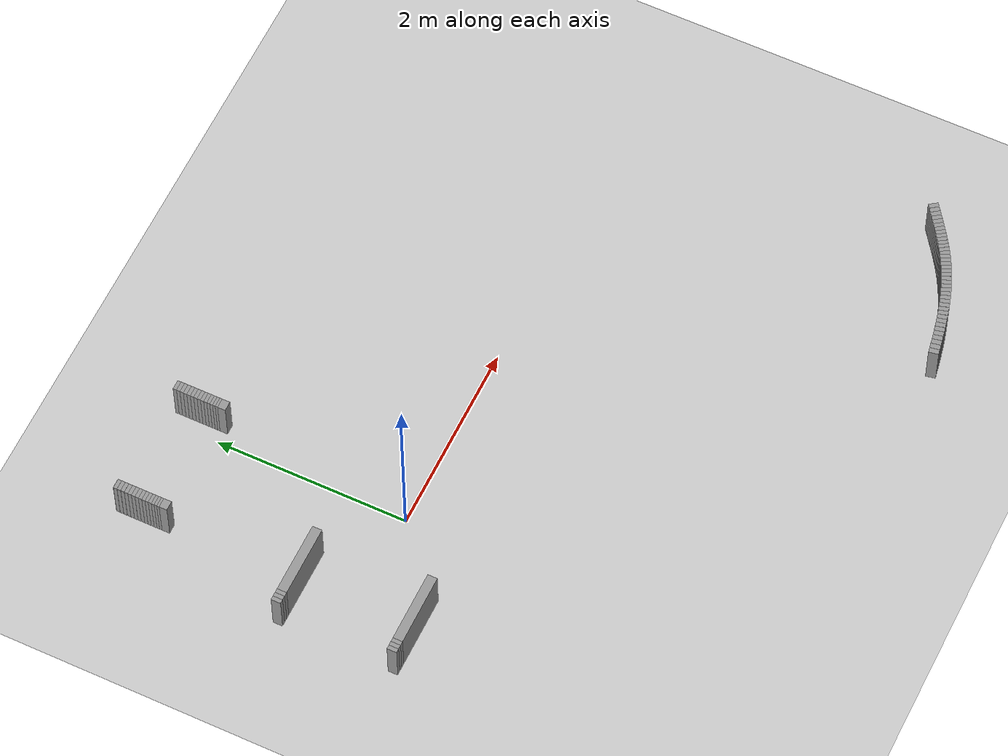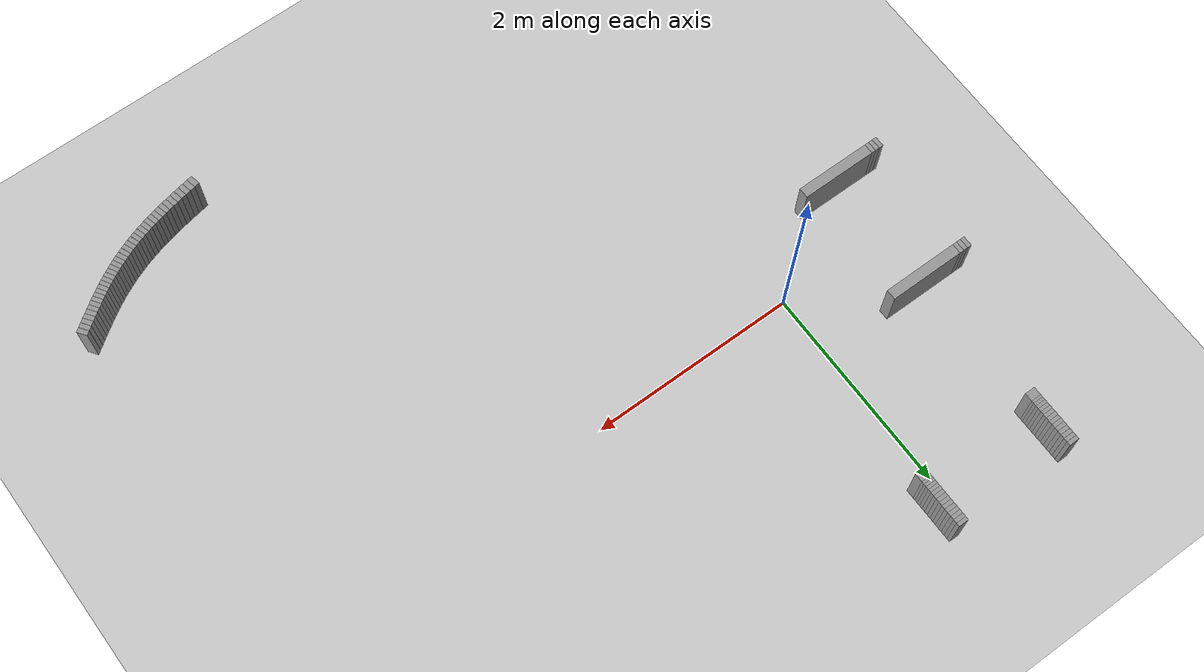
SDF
<sdf version="1.6">
 <world name="default">
  <include><uri>model://ground_plane</uri></include>
  <include><uri>model://sun</uri></include>
  <model name="wall_0_outward">
   <static>true</static>
   <link name="link">
    <collision name="collision">
     <geometry><box><size>0.7352529885792195 0.1 0.45</size></box></geometry>
    </collision>
    <visual name="visual">
     <geometry><box><size>0.7352529885792195 0.1 0.45</size></box></geometry>
     <material>
      <script><uri>file://media/materials/scripts/gazebo.material</uri><name>Gazebo/Gray</name></script>
     </material>
    </visual>
   </link>
   <pose>-1.0092482364808772 -0.6 0.225 0 0 3.141592653589793</pose>
  </model>
  <model name="wall_1_outward">
   <static>true</static>
   <link name="link">
    <collision name="collision">
     <geometry><box><size>0.04206558050443104 0.1 0.45</size></box></geometry>
    </collision>
    <visual name="visual">
     <geometry><box><size>0.04206558050443104 0.1 0.45</size></box></geometry>
     <material>
      <script><uri>file://media/materials/scripts/gazebo.material</uri><name>Gazebo/Gray</name></script>
     </material>
    </visual>
   </link>
   <pose>-1.3979075210213443 -0.599999760987078 0.225 0 0 3.141581289766011</pose>
  </model>
  <model name="wall_2_outward">
   <static>true</static>
   <link name="link">
    <collision name="collision">
     <geometry><box><size>0.042329117051585576 0.1 0.45</size></box></geometry>
    </collision>
    <visual name="visual">
     <geometry><box><size>0.042329117051585576 0.1 0.45</size></box></geometry>
     <material>
      <script><uri>file://media/materials/scripts/gazebo.material</uri><name>Gazebo/Gray</name></script>
     </material>
    </visual>
   </link>
   <pose>-1.440104869793848 -0.5999991030226777 0.225 0 0 3.141572858635049</pose>
  </model>
  <model name="wall_3_outward">
   <static>true</static>
   <link name="link">
    <collision name="collision">
     <geometry><box><size>0.042769654333055525 0.1 0.45</size></box></geometry>
    </collision>
    <visual name="visual">
     <geometry><box><size>0.042769654333055525 0.1 0.45</size></box></geometry>
     <material>
      <script><uri>file://media/materials/scripts/gazebo.material</uri><name>Gazebo/Gray</name></script>
     </material>
    </visual>
   </link>
   <pose>-1.4826542554699165 -0.5999979645170858 0.225 0 0 3.141559005709066</pose>
  </model>
  <model name="wall_568_outward">
   <static>true</static>
   <link name="link">
    <collision name="collision">
     <geometry><box><size>0.053017266116490075 0.1 0.45</size></box></geometry>
    </collision>
    <visual name="visual">
     <geometry><box><size>0.053017266116490075 0.1 0.45</size></box></geometry>
     <material>
      <script><uri>file://media/materials/scripts/gazebo.material</uri><name>Gazebo/Gray</name></script>
     </material>
    </visual>
   </link>
   <pose>3.615203698567644 -3.84858166946978 0.225 0 0 0.17872849832454832</pose>
  </model>
  <model name="wall_569_outward">
   <static>true</static>
   <link name="link">
    <collision name="collision">
     <geometry><box><size>0.05213729205083765 0.1 0.45</size></box></geometry>
    </collision>
    <visual name="visual">
     <geometry><box><size>0.05213729205083765 0.1 0.45</size></box></geometry>
     <material>
      <script><uri>file://media/materials/scripts/gazebo.material</uri><name>Gazebo/Gray</name></script>
     </material>
    </visual>
   </link>
   <pose>3.666919521861872 -3.8391040123762115 0.225 0 0 0.1838198138295405</pose>
  </model>
  <model name="wall_570_outward">
   <static>true</static>
   <link name="link">
    <collision name="collision">
     <geometry><box><size>0.0512412510066397 0.1 0.45</size></box></geometry>
    </collision>
    <visual name="visual">
     <geometry><box><size>0.0512412510066397 0.1 0.45</size></box></geometry>
     <material>
      <script><uri>file://media/materials/scripts/gazebo.material</uri><name>Gazebo/Gray</name></script>
     </material>
    </visual>
   </link>
   <pose>3.7177114322716642 -3.829515382858421 0.225 0 0 0.1894019966786466</pose>
  </model>
  <model name="wall_571_outward">
   <static>true</static>
   <link name="link">
    <collision name="collision">
     <geometry><box><size>0.05032899950200576 0.1 0.45</size></box></geometry>
    </collision>
    <visual name="visual">
     <geometry><box><size>0.05032899950200576 0.1 0.45</size></box></geometry>
     <material>
      <script><uri>file://media/materials/scripts/gazebo.material</uri><name>Gazebo/Gray</name></script>
     </material>
    </visual>
   </link>
   <pose>3.7675586047438125 -3.8198012847660427 0.225 0 0 0.19558427571582498</pose>
  </model>
  <model name="wall_572_outward">
   <static>true</static>
   <link name="link">
    <collision name="collision">
     <geometry><box><size>0.04940996343032932 0.1 0.45</size></box></geometry>
    </collision>
    <visual name="visual">
     <geometry><box><size>0.04940996343032932 0.1 0.45</size></box></geometry>
     <material>
      <script><uri>file://media/materials/scripts/gazebo.material</uri><name>Gazebo/Gray</name></script>
     </material>
    </visual>
   </link>
   <pose>3.8164434378640175 -3.809941851701242 0.225 0 0 0.20251378199398642</pose>
  </model>
  <model name="wall_573_outward">
   <static>true</static>
   <link name="link">
    <collision name="collision">
     <geometry><box><size>0.04850181031900355 0.1 0.45</size></box></geometry>
    </collision>
    <visual name="visual">
     <geometry><box><size>0.04850181031900355 0.1 0.45</size></box></geometry>
     <material>
      <script><uri>file://media/materials/scripts/gazebo.material</uri><name>Gazebo/Gray</name></script>
     </material>
    </visual>
   </link>
   <pose>3.8643601742831617 -3.799910454915584 0.225 0 0 0.21029867961050164</pose>
  </model>
  <model name="wall_574_outward">
   <static>true</static>
   <link name="link">
    <collision name="collision">
     <geometry><box><size>0.0476135669091147 0.1 0.45</size></box></geometry>
    </collision>
    <visual name="visual">
     <geometry><box><size>0.0476135669091147 0.1 0.45</size></box></geometry>
     <material>
      <script><uri>file://media/materials/scripts/gazebo.material</uri><name>Gazebo/Gray</name></script>
     </material>
    </visual>
   </link>
   <pose>3.911314717312827 -3.7896748241490243 0.225 0 0 0.21904715548584994</pose>
  </model>
  <model name="wall_575_outward">
   <static>true</static>
   <link name="link">
    <collision name="collision">
     <geometry><box><size>0.04676047734998403 0.1 0.45</size></box></geometry>
    </collision>
    <visual name="visual">
     <geometry><box><size>0.04676047734998403 0.1 0.45</size></box></geometry>
     <material>
      <script><uri>file://media/materials/scripts/gazebo.material</uri><name>Gazebo/Gray</name></script>
     </material>
    </visual>
   </link>
   <pose>3.957323245360799 -3.779197381860033 0.225 0 0 0.22886100199727444</pose>
  </model>
  <model name="wall_576_outward">
   <static>true</static>
   <link name="link">
    <collision name="collision">
     <geometry><box><size>0.04596101038654012 0.1 0.45</size></box></geometry>
    </collision>
    <visual name="visual">
     <geometry><box><size>0.04596101038654012 0.1 0.45</size></box></geometry>
     <material>
      <script><uri>file://media/materials/scripts/gazebo.material</uri><name>Gazebo/Gray</name></script>
     </material>
    </visual>
   </link>
   <pose>4.002416796040922 -3.768435133343746 0.225 0 0 0.2397977543745996</pose>
  </model>
  <model name="wall_577_outward">
   <static>true</static>
   <link name="link">
    <collision name="collision">
     <geometry><box><size>0.04523915246112577 0.1 0.45</size></box></geometry>
    </collision>
    <visual name="visual">
     <geometry><box><size>0.04523915246112577 0.1 0.45</size></box></geometry>
     <material>
      <script><uri>file://media/materials/scripts/gazebo.material</uri><name>Gazebo/Gray</name></script>
     </material>
    </visual>
   </link>
   <pose>4.046645455253664 -3.7573393232935617 0.225 0 0 0.2518997483251292</pose>
  </model>
  <model name="wall_578_outward">
   <static>true</static>
   <link name="link">
    <collision name="collision">
     <geometry><box><size>0.044611151980058064 0.1 0.45</size></box></geometry>
    </collision>
    <visual name="visual">
     <geometry><box><size>0.044611151980058064 0.1 0.45</size></box></geometry>
     <material>
      <script><uri>file://media/materials/scripts/gazebo.material</uri><name>Gazebo/Gray</name></script>
     </material>
    </visual>
   </link>
   <pose>4.090077385169733 -3.7458567923904056 0.225 0 0 0.26512522218582857</pose>
  </model>
  <model name="wall_579_outward">
   <static>true</static>
   <link name="link">
    <collision name="collision">
     <geometry><box><size>0.04408059990379287 0.1 0.45</size></box></geometry>
    </collision>
    <visual name="visual">
     <geometry><box><size>0.04408059990379287 0.1 0.45</size></box></geometry>
     <material>
      <script><uri>file://media/materials/scripts/gazebo.material</uri><name>Gazebo/Gray</name></script>
     </material>
    </visual>
   </link>
   <pose>4.1327889632396975 -3.7339329887893173 0.225 0 0 0.2794386958665861</pose>
  </model>
  <model name="wall_580_outward">
   <static>true</static>
   <link name="link">
    <collision name="collision">
     <geometry><box><size>0.0436638113182198 0.1 0.45</size></box></geometry>
    </collision>
    <visual name="visual">
     <geometry><box><size>0.0436638113182198 0.1 0.45</size></box></geometry>
     <material>
      <script><uri>file://media/materials/scripts/gazebo.material</uri><name>Gazebo/Gray</name></script>
     </material>
    </visual>
   </link>
   <pose>4.174864772362844 -3.7215118774106317 0.225 0 0 0.2947431972925181</pose>
  </model>
  <model name="wall_581_outward">
   <static>true</static>
   <link name="link">
    <collision name="collision">
     <geometry><box><size>0.043355145966205745 0.1 0.45</size></box></geometry>
    </collision>
    <visual name="visual">
     <geometry><box><size>0.043355145966205745 0.1 0.45</size></box></geometry>
     <material>
      <script><uri>file://media/materials/scripts/gazebo.material</uri><name>Gazebo/Gray</name></script>
     </material>
    </visual>
   </link>
   <pose>4.216393543263267 -3.708538350656753 0.225 0 0 0.3108989466485318</pose>
  </model>
  <model name="wall_582_outward">
   <static>true</static>
   <link name="link">
    <collision name="collision">
     <geometry><box><size>0.043134155114308154 0.1 0.45</size></box></geometry>
    </collision>
    <visual name="visual">
     <geometry><box><size>0.043134155114308154 0.1 0.45</size></box></geometry>
     <material>
      <script><uri>file://media/materials/scripts/gazebo.material</uri><name>Gazebo/Gray</name></script>
     </material>
    </visual>
   </link>
   <pose>4.257450814538057 -3.694963841428314 0.225 0 0 0.32776405779164725</pose>
  </model>
  <model name="wall_583_outward">
   <static>true</static>
   <link name="link">
    <collision name="collision">
     <geometry><box><size>0.042984876442158024 0.1 0.45</size></box></geometry>
    </collision>
    <visual name="visual">
     <geometry><box><size>0.042984876442158024 0.1 0.45</size></box></geometry>
     <material>
      <script><uri>file://media/materials/scripts/gazebo.material</uri><name>Gazebo/Gray</name></script>
     </material>
    </visual>
   </link>
   <pose>4.298094368321372 -3.680748263737411 0.225 0 0 0.34519201477795525</pose>
  </model>
  <model name="wall_584_outward">
   <static>true</static>
   <link name="link">
    <collision name="collision">
     <geometry><box><size>0.042874806264610786 0.1 0.45</size></box></geometry>
    </collision>
    <visual name="visual">
     <geometry><box><size>0.042874806264610786 0.1 0.45</size></box></geometry>
     <material>
      <script><uri>file://media/materials/scripts/gazebo.material</uri><name>Gazebo/Gray</name></script>
     </material>
    </visual>
   </link>
   <pose>4.338359283311862 -3.6658633225414476 0.225 0 0 0.3630192698370215</pose>
  </model>
  <model name="wall_585_outward">
   <static>true</static>
   <link name="link">
    <collision name="collision">
     <geometry><box><size>0.04276875257262225 0.1 0.45</size></box></geometry>
    </collision>
    <visual name="visual">
     <geometry><box><size>0.04276875257262225 0.1 0.45</size></box></geometry>
     <material>
      <script><uri>file://media/materials/scripts/gazebo.material</uri><name>Gazebo/Gray</name></script>
     </material>
    </visual>
   </link>
   <pose>4.378249557459766 -3.6502966746507144 0.225 0 0 0.38112612346563235</pose>
  </model>
  <model name="wall_586_outward">
   <static>true</static>
   <link name="link">
    <collision name="collision">
     <geometry><box><size>0.042637099325139524 0.1 0.45</size></box></geometry>
    </collision>
    <visual name="visual">
     <geometry><box><size>0.042637099325139524 0.1 0.45</size></box></geometry>
     <material>
      <script><uri>file://media/materials/scripts/gazebo.material</uri><name>Gazebo/Gray</name></script>
     </material>
    </visual>
   </link>
   <pose>4.417740263960553 -3.6340525401783923 0.225 0 0 0.3993909199528518</pose>
  </model>
  <model name="wall_587_outward">
   <static>true</static>
   <link name="link">
    <collision name="collision">
     <geometry><box><size>0.04245393868913026 0.1 0.45</size></box></geometry>
    </collision>
    <visual name="visual">
     <geometry><box><size>0.04245393868913026 0.1 0.45</size></box></geometry>
     <material>
      <script><uri>file://media/materials/scripts/gazebo.material</uri><name>Gazebo/Gray</name></script>
     </material>
    </visual>
   </link>
   <pose>4.456782777211078 -3.6171513187839315 0.225 0 0 0.41772223702745376</pose>
  </model>
  <model name="wall_588_outward">
   <static>true</static>
   <link name="link">
    <collision name="collision">
     <geometry><box><size>0.04219462105625225 0.1 0.45</size></box></geometry>
    </collision>
    <visual name="visual">
     <geometry><box><size>0.04219462105625225 0.1 0.45</size></box></geometry>
     <material>
      <script><uri>file://media/materials/scripts/gazebo.material</uri><name>Gazebo/Gray</name></script>
     </material>
    </visual>
   </link>
   <pose>4.49530781607841 -3.599629452822336 0.225 0 0 0.4360399209812888</pose>
  </model>
  <model name="wall_589_outward">
   <static>true</static>
   <link name="link">
    <collision name="collision">
     <geometry><box><size>0.04185732292672582 0.1 0.45</size></box></geometry>
    </collision>
    <visual name="visual">
     <geometry><box><size>0.04185732292672582 0.1 0.45</size></box></geometry>
     <material>
      <script><uri>file://media/materials/scripts/gazebo.material</uri><name>Gazebo/Gray</name></script>
     </material>
    </visual>
   </link>
   <pose>4.533236974308696 -3.5815348634082507 0.225 0 0 0.4542933882945561</pose>
  </model>
  <model name="wall_590_outward">
   <static>true</static>
   <link name="link">
    <collision name="collision">
     <geometry><box><size>0.04145026174393556 0.1 0.45</size></box></geometry>
    </collision>
    <visual name="visual">
     <geometry><box><size>0.04145026174393556 0.1 0.45</size></box></geometry>
     <material>
      <script><uri>file://media/materials/scripts/gazebo.material</uri><name>Gazebo/Gray</name></script>
     </material>
    </visual>
   </link>
   <pose>4.570498067819502 -3.562920165621402 0.225 0 0 0.4724096785721097</pose>
  </model>
  <model name="wall_591_outward">
   <static>true</static>
   <link name="link">
    <collision name="collision">
     <geometry><box><size>0.040995072226434906 0.1 0.45</size></box></geometry>
    </collision>
    <visual name="visual">
     <geometry><box><size>0.040995072226434906 0.1 0.45</size></box></geometry>
     <material>
      <script><uri>file://media/materials/scripts/gazebo.material</uri><name>Gazebo/Gray</name></script>
     </material>
    </visual>
   </link>
   <pose>4.607035752278472 -3.5438369399902085 0.225 0 0 0.49032783140802494</pose>
  </model>
  <model name="wall_592_outward">
   <static>true</static>
   <link name="link">
    <collision name="collision">
     <geometry><box><size>0.04052536722149174 0.1 0.45</size></box></geometry>
    </collision>
    <visual name="visual">
     <geometry><box><size>0.04052536722149174 0.1 0.45</size></box></geometry>
     <material>
      <script><uri>file://media/materials/scripts/gazebo.material</uri><name>Gazebo/Gray</name></script>
     </material>
    </visual>
   </link>
   <pose>4.642822688504974 -3.5243289460849963 0.225 0 0 0.5079435835349708</pose>
  </model>
  <model name="wall_593_outward">
   <static>true</static>
   <link name="link">
    <collision name="collision">
     <geometry><box><size>0.040093855230199454 0.1 0.45</size></box></geometry>
    </collision>
    <visual name="visual">
     <geometry><box><size>0.040093855230199454 0.1 0.45</size></box></geometry>
     <material>
      <script><uri>file://media/materials/scripts/gazebo.material</uri><name>Gazebo/Gray</name></script>
     </material>
    </visual>
   </link>
   <pose>4.677872635417048 -3.5044230272156076 0.225 0 0 0.5251581781216179</pose>
  </model>
  <model name="wall_594_outward">
   <static>true</static>
   <link name="link">
    <collision name="collision">
     <geometry><box><size>0.03975268590386546 0.1 0.45</size></box></geometry>
    </collision>
    <visual name="visual">
     <geometry><box><size>0.03975268590386546 0.1 0.45</size></box></geometry>
     <material>
      <script><uri>file://media/materials/scripts/gazebo.material</uri><name>Gazebo/Gray</name></script>
     </material>
    </visual>
   </link>
   <pose>4.7122480824285375 -3.484123121769032 0.225 0 0 0.5417746030446022</pose>
  </model>
  <model name="wall_595_outward">
   <static>true</static>
   <link name="link">
    <collision name="collision">
     <geometry><box><size>0.039545795710744555 0.1 0.45</size></box></geometry>
    </collision>
    <visual name="visual">
     <geometry><box><size>0.039545795710744555 0.1 0.45</size></box></geometry>
     <material>
      <script><uri>file://media/materials/scripts/gazebo.material</uri><name>Gazebo/Gray</name></script>
     </material>
    </visual>
   </link>
   <pose>4.746055662094089 -3.463410536980983 0.225 0 0 0.5576208728609399</pose>
  </model>
  <model name="wall_596_outward">
   <static>true</static>
   <link name="link">
    <collision name="collision">
     <geometry><box><size>0.03952248201079314 0.1 0.45</size></box></geometry>
    </collision>
    <visual name="visual">
     <geometry><box><size>0.03952248201079314 0.1 0.45</size></box></geometry>
     <material>
      <script><uri>file://media/materials/scripts/gazebo.material</uri><name>Gazebo/Gray</name></script>
     </material>
    </visual>
   </link>
   <pose>4.779444202719219 -3.4422429283894376 0.225 0 0 0.5724425969107847</pose>
  </model>
  <model name="wall_597_outward">
   <static>true</static>
   <link name="link">
    <collision name="collision">
     <geometry><box><size>0.03969649491608058 0.1 0.45</size></box></geometry>
    </collision>
    <visual name="visual">
     <geometry><box><size>0.03969649491608058 0.1 0.45</size></box></geometry>
     <material>
      <script><uri>file://media/materials/scripts/gazebo.material</uri><name>Gazebo/Gray</name></script>
     </material>
    </visual>
   </link>
   <pose>4.812591839661009 -3.420561747110428 0.225 0 0 0.5860026867211826</pose>
  </model>
  <model name="wall_598_outward">
   <static>true</static>
   <link name="link">
    <collision name="collision">
     <geometry><box><size>0.04009765626313205 0.1 0.45</size></box></geometry>
    </collision>
    <visual name="visual">
     <geometry><box><size>0.04009765626313205 0.1 0.45</size></box></geometry>
     <material>
      <script><uri>file://media/materials/scripts/gazebo.material</uri><name>Gazebo/Gray</name></script>
     </material>
    </visual>
   </link>
   <pose>4.84569733586841 -3.3982964205982915 0.225 0 0 0.5980752355560149</pose>
  </model>
  <model name="wall_599_outward">
   <static>true</static>
   <link name="link">
    <collision name="collision">
     <geometry><box><size>0.0407092494180846 0.1 0.45</size></box></geometry>
    </collision>
    <visual name="visual">
     <geometry><box><size>0.0407092494180846 0.1 0.45</size></box></geometry>
     <material>
      <script><uri>file://media/materials/scripts/gazebo.material</uri><name>Gazebo/Gray</name></script>
     </material>
    </visual>
   </link>
   <pose>4.878968538982267 -3.3753743206604643 0.225 0 0 0.6083854297769725</pose>
  </model>
  <model name="wall_600_outward">
   <static>true</static>
   <link name="link">
    <collision name="collision">
     <geometry><box><size>0.04149790492573709 0.1 0.45</size></box></geometry>
    </collision>
    <visual name="visual">
     <geometry><box><size>0.04149790492573709 0.1 0.45</size></box></geometry>
     <material>
      <script><uri>file://media/materials/scripts/gazebo.material</uri><name>Gazebo/Gray</name></script>
     </material>
    </visual>
   </link>
   <pose>4.912596530916309 -3.3517389176224235 0.225 0 0 0.6168048722072831</pose>
  </model>
  <model name="wall_601_outward">
   <static>true</static>
   <link name="link">
    <collision name="collision">
     <geometry><box><size>0.04244134782927291 0.1 0.45</size></box></geometry>
    </collision>
    <visual name="visual">
     <geometry><box><size>0.04244134782927291 0.1 0.45</size></box></geometry>
     <material>
      <script><uri>file://media/materials/scripts/gazebo.material</uri><name>Gazebo/Gray</name></script>
     </material>
    </visual>
   </link>
   <pose>4.946753781322598 -3.3273521617902238 0.225 0 0 0.62318497342778</pose>
  </model>
  <model name="wall_602_outward">
   <static>true</static>
   <link name="link">
    <collision name="collision">
     <geometry><box><size>0.04347704874346127 0.1 0.45</size></box></geometry>
    </collision>
    <visual name="visual">
     <geometry><box><size>0.04347704874346127 0.1 0.45</size></box></geometry>
     <material>
      <script><uri>file://media/materials/scripts/gazebo.material</uri><name>Gazebo/Gray</name></script>
     </material>
    </visual>
   </link>
   <pose>4.981583061810033 -3.302204489086564 0.225 0 0 0.6274764419319722</pose>
  </model>
  <model name="wall_603_outward">
   <static>true</static>
   <link name="link">
    <collision name="collision">
     <geometry><box><size>0.04455799672066599 0.1 0.45</size></box></geometry>
    </collision>
    <visual name="visual">
     <geometry><box><size>0.04455799672066599 0.1 0.45</size></box></geometry>
     <material>
      <script><uri>file://media/materials/scripts/gazebo.material</uri><name>Gazebo/Gray</name></script>
     </material>
    </visual>
   </link>
   <pose>5.01718643259776 -3.2763212924385603 0.225 0 0 0.6297151577611809</pose>
  </model>
  <model name="wall_604_outward">
   <static>true</static>
   <link name="link">
    <collision name="collision">
     <geometry><box><size>0.04517443209630957 0.1 0.45</size></box></geometry>
    </collision>
    <visual name="visual">
     <geometry><box><size>0.04517443209630957 0.1 0.45</size></box></geometry>
     <material>
      <script><uri>file://media/materials/scripts/gazebo.material</uri><name>Gazebo/Gray</name></script>
     </material>
    </visual>
   </link>
   <pose>5.053443452164512 -3.2498939261349804 0.225 0 0 0.6299890171882399</pose>
  </model>
  <model name="wall_605_outward">
   <static>true</static>
   <link name="link">
    <collision name="collision">
     <geometry><box><size>0.0009386474885781209 0.1 0.45</size></box></geometry>
    </collision>
    <visual name="visual">
     <geometry><box><size>0.0009386474885781209 0.1 0.45</size></box></geometry>
     <material>
      <script><uri>file://media/materials/scripts/gazebo.material</uri><name>Gazebo/Gray</name></script>
     </material>
    </visual>
   </link>
   <pose>5.07207413590919 -3.236310787914367 0.225 0 0 0.629206810868398</pose>
  </model>
  <model name="wall_606_outward">
   <static>true</static>
   <link name="link">
    <collision name="collision">
     <geometry><box><size>0.04525927462447688 0.1 0.45</size></box></geometry>
    </collision>
    <visual name="visual">
     <geometry><box><size>0.04525927462447688 0.1 0.45</size></box></geometry>
     <material>
      <script><uri>file://media/materials/scripts/gazebo.material</uri><name>Gazebo/Gray</name></script>
     </material>
    </visual>
   </link>
   <pose>5.09075993173426 -3.222731280199557 0.225 0 0 0.6284246045477452</pose>
  </model>
  <model name="wall_607_outward">
   <static>true</static>
   <link name="link">
    <collision name="collision">
     <geometry><box><size>0.0019206672799197992 0.1 0.45</size></box></geometry>
    </collision>
    <visual name="visual">
     <geometry><box><size>0.0019206672799197992 0.1 0.45</size></box></geometry>
     <material>
      <script><uri>file://media/materials/scripts/gazebo.material</uri><name>Gazebo/Gray</name></script>
     </material>
    </visual>
   </link>
   <pose>5.109844050824221 -3.2088646630052624 0.225 0 0 0.626824047797629</pose>
  </model>
  <model name="wall_608_outward">
   <static>true</static>
   <link name="link">
    <collision name="collision">
     <geometry><box><size>0.04530692413886123 0.1 0.45</size></box></geometry>
    </collision>
    <visual name="visual">
     <geometry><box><size>0.04530692413886123 0.1 0.45</size></box></geometry>
     <material>
      <script><uri>file://media/materials/scripts/gazebo.material</uri><name>Gazebo/Gray</name></script>
     </material>
    </visual>
   </link>
   <pose>5.128989979333249 -3.1950427704575404 0.225 0 0 0.6252234910477864</pose>
  </model>
  <model name="wall_945_outward">
   <static>true</static>
   <link name="link">
    <collision name="collision">
     <geometry><box><size>0.03646357274805223 0.1 0.45</size></box></geometry>
    </collision>
    <visual name="visual">
     <geometry><box><size>0.03646357274805223 0.1 0.45</size></box></geometry>
     <material>
      <script><uri>file://media/materials/scripts/gazebo.material</uri><name>Gazebo/Gray</name></script>
     </material>
    </visual>
   </link>
   <pose>0.17563587365658845 2.502127081571652 0.225 0 0 -1.5772653695107186</pose>
  </model>
  <model name="wall_946_outward">
   <static>true</static>
   <link name="link">
    <collision name="collision">
     <geometry><box><size>0.03676279836962882 0.1 0.45</size></box></geometry>
    </collision>
    <visual name="visual">
     <geometry><box><size>0.03676279836962882 0.1 0.45</size></box></geometry>
     <material>
      <script><uri>file://media/materials/scripts/gazebo.material</uri><name>Gazebo/Gray</name></script>
     </material>
    </visual>
   </link>
   <pose>0.1754334836429202 2.465514471487891 0.225 0 0 -1.575390586876837</pose>
  </model>
  <model name="wall_947_outward">
   <static>true</static>
   <link name="link">
    <collision name="collision">
     <geometry><box><size>0.03694583911184088 0.1 0.45</size></box></geometry>
    </collision>
    <visual name="visual">
     <geometry><box><size>0.03694583911184088 0.1 0.45</size></box></geometry>
     <material>
      <script><uri>file://media/materials/scripts/gazebo.material</uri><name>Gazebo/Gray</name></script>
     </material>
    </visual>
   </link>
   <pose>0.1752898019954475 2.42866044170192 0.225 0 0 -1.5740028106075779</pose>
  </model>
  <model name="wall_948_outward">
   <static>true</static>
   <link name="link">
    <collision name="collision">
     <geometry><box><size>0.0370051047387951 0.1 0.45</size></box></geometry>
    </collision>
    <visual name="visual">
     <geometry><box><size>0.0370051047387951 0.1 0.45</size></box></geometry>
     <material>
      <script><uri>file://media/materials/scripts/gazebo.material</uri><name>Gazebo/Gray</name></script>
     </material>
    </visual>
   </link>
   <pose>0.17518986075153492 2.3916851095235163 0.225 0 0 -1.572996469775945</pose>
  </model>
  <model name="wall_949_outward">
   <static>true</static>
   <link name="link">
    <collision name="collision">
     <geometry><box><size>0.036920801089077394 0.1 0.45</size></box></geometry>
    </collision>
    <visual name="visual">
     <geometry><box><size>0.036920801089077394 0.1 0.45</size></box></geometry>
     <material>
      <script><uri>file://media/materials/scripts/gazebo.material</uri><name>Gazebo/Gray</name></script>
     </material>
    </visual>
   </link>
   <pose>0.17512173779788243 2.3547222217477697 0.225 0 0 -1.5722813831878129</pose>
  </model>
  <model name="wall_950_outward">
   <static>true</static>
   <link name="link">
    <collision name="collision">
     <geometry><box><size>0.03667301151120825 0.1 0.45</size></box></geometry>
    </collision>
    <visual name="visual">
     <geometry><box><size>0.03667301151120825 0.1 0.45</size></box></geometry>
     <material>
      <script><uri>file://media/materials/scripts/gazebo.material</uri><name>Gazebo/Gray</name></script>
     </material>
    </visual>
   </link>
   <pose>0.17507636043560715 2.3179253446020347 0.225 0 0 -1.5717759376116949</pose>
  </model>
  <model name="wall_951_outward">
   <static>true</static>
   <link name="link">
    <collision name="collision">
     <geometry><box><size>0.03623785585728111 0.1 0.45</size></box></geometry>
    </collision>
    <visual name="visual">
     <geometry><box><size>0.03623785585728111 0.1 0.45</size></box></geometry>
     <material>
      <script><uri>file://media/materials/scripts/gazebo.material</uri><name>Gazebo/Gray</name></script>
     </material>
    </visual>
   </link>
   <pose>0.17504689431524822 2.2814699233676974 0.225 0 0 -1.5714312145029048</pose>
  </model>
  <model name="wall_952_outward">
   <static>true</static>
   <link name="link">
    <collision name="collision">
     <geometry><box><size>0.03557499856727655 0.1 0.45</size></box></geometry>
    </collision>
    <visual name="visual">
     <geometry><box><size>0.03557499856727655 0.1 0.45</size></box></geometry>
     <material>
      <script><uri>file://media/materials/scripts/gazebo.material</uri><name>Gazebo/Gray</name></script>
     </material>
    </visual>
   </link>
   <pose>0.1750280758844605 2.245563501311232 0.225 0 0 -1.571207567690869</pose>
  </model>
  <model name="wall_953_outward">
   <static>true</static>
   <link name="link">
    <collision name="collision">
     <geometry><box><size>0.03465790601138353 0.1 0.45</size></box></geometry>
    </collision>
    <visual name="visual">
     <geometry><box><size>0.03465790601138353 0.1 0.45</size></box></geometry>
     <material>
      <script><uri>file://media/materials/scripts/gazebo.material</uri><name>Gazebo/Gray</name></script>
     </material>
    </visual>
   </link>
   <pose>0.1750163355442162 2.2104470510910734 0.225 0 0 -1.571051702486357</pose>
  </model>
  <model name="wall_954_outward">
   <static>true</static>
   <link name="link">
    <collision name="collision">
     <geometry><box><size>0.033458048333001485 0.1 0.45</size></box></geometry>
    </collision>
    <visual name="visual">
     <geometry><box><size>0.033458048333001485 0.1 0.45</size></box></geometry>
     <material>
      <script><uri>file://media/materials/scripts/gazebo.material</uri><name>Gazebo/Gray</name></script>
     </material>
    </visual>
   </link>
   <pose>0.1750091984685039 2.1763890747037244 0.225 0 0 -1.5709584212714869</pose>
  </model>
  <model name="wall_955_outward">
   <static>true</static>
   <link name="link">
    <collision name="collision">
     <geometry><box><size>0.03194349745004397 0.1 0.45</size></box></geometry>
    </collision>
    <visual name="visual">
     <geometry><box><size>0.03194349745004397 0.1 0.45</size></box></geometry>
     <material>
      <script><uri>file://media/materials/scripts/gazebo.material</uri><name>Gazebo/Gray</name></script>
     </material>
    </visual>
   </link>
   <pose>0.17500485876208577 2.143688302114949 0.225 0 0 -1.5708982582768363</pose>
  </model>
  <model name="wall_956_outward">
   <static>true</static>
   <link name="link">
    <collision name="collision">
     <geometry><box><size>0.0300944116613028 0.1 0.45</size></box></geometry>
    </collision>
    <visual name="visual">
     <geometry><box><size>0.0300944116613028 0.1 0.45</size></box></geometry>
     <material>
      <script><uri>file://media/materials/scripts/gazebo.material</uri><name>Gazebo/Gray</name></script>
     </material>
    </visual>
   </link>
   <pose>0.17500227298815324 2.1126693476727296 0.225 0 0 -1.5708599764804285</pose>
  </model>
  <model name="wall_957_outward">
   <static>true</static>
   <link name="link">
    <collision name="collision">
     <geometry><box><size>0.027906198817845278 0.1 0.45</size></box></geometry>
    </collision>
    <visual name="visual">
     <geometry><box><size>0.027906198817845278 0.1 0.45</size></box></geometry>
     <material>
      <script><uri>file://media/materials/scripts/gazebo.material</uri><name>Gazebo/Gray</name></script>
     </material>
    </visual>
   </link>
   <pose>0.1750008965278876 2.0836690424699182 0.225 0 0 -1.5708263352062772</pose>
  </model>
  <model name="wall_958_outward">
   <static>true</static>
   <link name="link">
    <collision name="collision">
     <geometry><box><size>0.025369549175922657 0.1 0.45</size></box></geometry>
    </collision>
    <visual name="visual">
     <geometry><box><size>0.025369549175922657 0.1 0.45</size></box></geometry>
     <material>
      <script><uri>file://media/materials/scripts/gazebo.material</uri><name>Gazebo/Gray</name></script>
     </material>
    </visual>
   </link>
   <pose>0.1750002389087703 2.0570311684815668 0.225 0 0 -1.5708151610886103</pose>
  </model>
  <model name="wall_959_outward">
   <static>true</static>
   <link name="link">
    <collision name="collision">
     <geometry><box><size>0.08202655272876558 0.1 0.45</size></box></geometry>
    </collision>
    <visual name="visual">
     <geometry><box><size>0.08202655272876558 0.1 0.45</size></box></geometry>
     <material>
      <script><uri>file://media/materials/scripts/gazebo.material</uri><name>Gazebo/Gray</name></script>
     </material>
    </visual>
   </link>
   <pose>0.17500000000000004 2.003333117531472 0.225 0 0 -1.5707963267948966</pose>
  </model>
  <model name="wall_0_inward">
   <static>true</static>
   <link name="link">
    <collision name="collision">
     <geometry><box><size>0.7352495791557213 0.1 0.45</size></box></geometry>
    </collision>
    <visual name="visual">
     <geometry><box><size>0.7352495791557213 0.1 0.45</size></box></geometry>
     <material>
      <script><uri>file://media/materials/scripts/gazebo.material</uri><name>Gazebo/Gray</name></script>
     </material>
    </visual>
   </link>
   <pose>-1.0092465317691282 0.6 0.225 0 0 3.141592653589793</pose>
  </model>
  <model name="wall_1_inward">
   <static>true</static>
   <link name="link">
    <collision name="collision">
     <geometry><box><size>0.04205282302254998 0.1 0.45</size></box></geometry>
    </collision>
    <visual name="visual">
     <geometry><box><size>0.04205282302254998 0.1 0.45</size></box></geometry>
     <material>
      <script><uri>file://media/materials/scripts/gazebo.material</uri><name>Gazebo/Gray</name></script>
     </material>
    </visual>
   </link>
   <pose>-1.3978977328569058 0.6000002389598029 0.225 0 0 3.1415812888448977</pose>
  </model>
  <model name="wall_2_inward">
   <static>true</static>
   <link name="link">
    <collision name="collision">
     <geometry><box><size>0.04231737327682394 0.1 0.45</size></box></geometry>
    </collision>
    <visual name="visual">
     <geometry><box><size>0.04231737327682394 0.1 0.45</size></box></geometry>
     <material>
      <script><uri>file://media/materials/scripts/gazebo.material</uri><name>Gazebo/Gray</name></script>
     </material>
    </visual>
   </link>
   <pose>-1.4400828310010894 0.6000008967655088 0.225 0 0 3.141572858131304</pose>
  </model>
  <model name="wall_3_inward">
   <static>true</static>
   <link name="link">
    <collision name="collision">
     <geometry><box><size>0.04275053263747769 0.1 0.45</size></box></geometry>
    </collision>
    <visual name="visual">
     <geometry><box><size>0.04275053263747769 0.1 0.45</size></box></geometry>
     <material>
      <script><uri>file://media/materials/scripts/gazebo.material</uri><name>Gazebo/Gray</name></script>
     </material>
    </visual>
   </link>
   <pose>-1.4826167839419933 0.6000020348725994 0.225 0 0 3.141559004362828</pose>
  </model>
  <model name="wall_1487_inward">
   <static>true</static>
   <link name="link">
    <collision name="collision">
     <geometry><box><size>0.0014963915705379271 0.1 0.45</size></box></geometry>
    </collision>
    <visual name="visual">
     <geometry><box><size>0.0014963915705379271 0.1 0.45</size></box></geometry>
     <material>
      <script><uri>file://media/materials/scripts/gazebo.material</uri><name>Gazebo/Gray</name></script>
     </material>
    </visual>
   </link>
   <pose>-1.0242104628117188 2.529617637799759 0.225 0 0 -1.5785123628093172</pose>
  </model>
  <model name="wall_1488_inward">
   <static>true</static>
   <link name="link">
    <collision name="collision">
     <geometry><box><size>0.03777420406984148 0.1 0.45</size></box></geometry>
    </collision>
    <visual name="visual">
     <geometry><box><size>0.03777420406984148 0.1 0.45</size></box></geometry>
     <material>
      <script><uri>file://media/materials/scripts/gazebo.material</uri><name>Gazebo/Gray</name></script>
     </material>
    </visual>
   </link>
   <pose>-1.0243384164777165 2.5099827574494 0.225 0 0 -1.5772653695107213</pose>
  </model>
  <model name="wall_1489_inward">
   <static>true</static>
   <link name="link">
    <collision name="collision">
     <geometry><box><size>0.0011248694155913223 0.1 0.45</size></box></geometry>
    </collision>
    <visual name="visual">
     <geometry><box><size>0.0011248694155913223 0.1 0.45</size></box></geometry>
     <material>
      <script><uri>file://media/materials/scripts/gazebo.material</uri><name>Gazebo/Gray</name></script>
     </material>
    </visual>
   </link>
   <pose>-1.0244637082722463 2.490533624508874 0.225 0 0 -1.5763279781936563</pose>
  </model>
  <model name="wall_1490_inward">
   <static>true</static>
   <link name="link">
    <collision name="collision">
     <geometry><box><size>0.03774156627231141 0.1 0.45</size></box></geometry>
    </collision>
    <visual name="visual">
     <geometry><box><size>0.03774156627231141 0.1 0.45</size></box></geometry>
     <material>
      <script><uri>file://media/materials/scripts/gazebo.material</uri><name>Gazebo/Gray</name></script>
     </material>
    </visual>
   </link>
   <pose>-1.0245535164298056 2.4711006144245067 0.225 0 0 -1.5753905868768374</pose>
  </model>
  <model name="wall_1491_inward">
   <static>true</static>
   <link name="link">
    <collision name="collision">
     <geometry><box><size>0.0008326656947370377 0.1 0.45</size></box></geometry>
    </collision>
    <visual name="visual">
     <geometry><box><size>0.0008326656947370377 0.1 0.45</size></box></geometry>
     <material>
      <script><uri>file://media/materials/scripts/gazebo.material</uri><name>Gazebo/Gray</name></script>
     </material>
    </visual>
   </link>
   <pose>-1.0246418372593349 2.451813700762383 0.225 0 0 -1.5746966987422588</pose>
  </model>
  <model name="wall_1492_inward">
   <static>true</static>
   <link name="link">
    <collision name="collision">
     <geometry><box><size>0.03766407433420722 0.1 0.45</size></box></geometry>
    </collision>
    <visual name="visual">
     <geometry><box><size>0.03766407433420722 0.1 0.45</size></box></geometry>
     <material>
      <script><uri>file://media/materials/scripts/gazebo.material</uri><name>Gazebo/Gray</name></script>
     </material>
    </visual>
   </link>
   <pose>-1.024703845627038 2.432565430725796 0.225 0 0 -1.5740028106075832</pose>
  </model>
  <model name="wall_1493_inward">
   <static>true</static>
   <link name="link">
    <collision name="collision">
     <geometry><box><size>0.0006038044735004624 0.1 0.45</size></box></geometry>
    </collision>
    <visual name="visual">
     <geometry><box><size>0.0006038044735004624 0.1 0.45</size></box></geometry>
     <material>
      <script><uri>file://media/materials/scripts/gazebo.material</uri><name>Gazebo/Gray</name></script>
     </material>
    </visual>
   </link>
   <pose>-1.024765046281267 2.4134315892361515 0.225 0 0 -1.5734996401916148</pose>
  </model>
  <model name="wall_1494_inward">
   <static>true</static>
   <link name="link">
    <collision name="collision">
     <geometry><box><size>0.03795058491612932 0.1 0.45</size></box></geometry>
    </collision>
    <visual name="visual">
     <geometry><box><size>0.03795058491612932 0.1 0.45</size></box></geometry>
     <material>
      <script><uri>file://media/materials/scripts/gazebo.material</uri><name>Gazebo/Gray</name></script>
     </material>
    </visual>
   </link>
   <pose>-1.024807534037332 2.3941544414020295 0.225 0 0 -1.5729924275551916</pose>
  </model>
  <model name="wall_1495_inward">
   <static>true</static>
   <link name="link">
    <collision name="collision">
     <geometry><box><size>0.03759022808355994 0.1 0.45</size></box></geometry>
    </collision>
    <visual name="visual">
     <geometry><box><size>0.03759022808355994 0.1 0.45</size></box></geometry>
     <material>
      <script><uri>file://media/materials/scripts/gazebo.material</uri><name>Gazebo/Gray</name></script>
     </material>
    </visual>
   </link>
   <pose>-1.0248770791307922 2.35638410132817 0.225 0 0 -1.5722793442917629</pose>
  </model>
  <model name="wall_1496_inward">
   <static>true</static>
   <link name="link">
    <collision name="collision">
     <geometry><box><size>0.037134895982014596 0.1 0.45</size></box></geometry>
    </collision>
    <visual name="visual">
     <geometry><box><size>0.037134895982014596 0.1 0.45</size></box></geometry>
     <material>
      <script><uri>file://media/materials/scripts/gazebo.material</uri><name>Gazebo/Gray</name></script>
     </material>
    </visual>
   </link>
   <pose>-1.0249231236484433 2.319021568855365 0.225 0 0 -1.571774977592682</pose>
  </model>
  <model name="wall_1497_inward">
   <static>true</static>
   <link name="link">
    <collision name="collision">
     <geometry><box><size>0.03654255492101025 0.1 0.45</size></box></geometry>
    </collision>
    <visual name="visual">
     <geometry><box><size>0.03654255492101025 0.1 0.45</size></box></geometry>
     <material>
      <script><uri>file://media/materials/scripts/gazebo.material</uri><name>Gazebo/Gray</name></script>
     </material>
    </visual>
   </link>
   <pose>-1.0249528873993388 2.28218285597306 0.225 0 0 -1.571430803875653</pose>
  </model>
  <model name="wall_1498_inward">
   <static>true</static>
   <link name="link">
    <collision name="collision">
     <geometry><box><size>0.03578237129541193 0.1 0.45</size></box></geometry>
    </collision>
    <visual name="visual">
     <geometry><box><size>0.03578237129541193 0.1 0.45</size></box></geometry>
     <material>
      <script><uri>file://media/materials/scripts/gazebo.material</uri><name>Gazebo/Gray</name></script>
     </material>
    </visual>
   </link>
   <pose>-1.0249718340482603 2.2460203980538744 0.225 0 0 -1.5712073640098851</pose>
  </model>
  <model name="wall_1499_inward">
   <static>true</static>
   <link name="link">
    <collision name="collision">
     <geometry><box><size>0.03478861866507111 0.1 0.45</size></box></geometry>
    </collision>
    <visual name="visual">
     <geometry><box><size>0.03478861866507111 0.1 0.45</size></box></geometry>
     <material>
      <script><uri>file://media/materials/scripts/gazebo.material</uri><name>Gazebo/Gray</name></script>
     </material>
    </visual>
   </link>
   <pose>-1.024983628769692 2.210734905151872 0.225 0 0 -1.571051627449881</pose>
  </model>
  <model name="wall_1500_inward">
   <static>true</static>
   <link name="link">
    <collision name="collision">
     <geometry><box><size>0.03354017939262648 0.1 0.45</size></box></geometry>
    </collision>
    <visual name="visual">
     <geometry><box><size>0.03354017939262648 0.1 0.45</size></box></geometry>
     <material>
      <script><uri>file://media/materials/scripts/gazebo.material</uri><name>Gazebo/Gray</name></script>
     </material>
    </visual>
   </link>
   <pose>-1.0249907873441713 2.1765705069101156 0.225 0 0 -1.5709583888961107</pose>
  </model>
  <model name="wall_1501_inward">
   <static>true</static>
   <link name="link">
    <collision name="collision">
     <geometry><box><size>0.03199599996722412 0.1 0.45</size></box></geometry>
    </collision>
    <visual name="visual">
     <geometry><box><size>0.03199599996722412 0.1 0.45</size></box></geometry>
     <material>
      <script><uri>file://media/materials/scripts/gazebo.material</uri><name>Gazebo/Gray</name></script>
     </material>
    </visual>
   </link>
   <pose>-1.0249951356201523 2.1438024175335038 0.225 0 0 -1.5708982445360964</pose>
  </model>
  <model name="wall_1502_inward">
   <static>true</static>
   <link name="link">
    <collision name="collision">
     <geometry><box><size>0.030136173346206722 0.1 0.45</size></box></geometry>
    </collision>
    <visual name="visual">
     <geometry><box><size>0.030136173346206722 0.1 0.45</size></box></geometry>
     <material>
      <script><uri>file://media/materials/scripts/gazebo.material</uri><name>Gazebo/Gray</name></script>
     </material>
    </visual>
   </link>
   <pose>-1.024997725009389 2.1127363309903875 0.225 0 0 -1.570859965214214</pose>
  </model>
  <model name="wall_1503_inward">
   <static>true</static>
   <link name="link">
    <collision name="collision">
     <geometry><box><size>0.027926347896279406 0.1 0.45</size></box></geometry>
    </collision>
    <visual name="visual">
     <geometry><box><size>0.027926347896279406 0.1 0.45</size></box></geometry>
     <material>
      <script><uri>file://media/materials/scripts/gazebo.material</uri><name>Gazebo/Gray</name></script>
     </material>
    </visual>
   </link>
   <pose>-1.024999102912545 2.0837050704059425 0.225 0 0 -1.57082633386495</pose>
  </model>
  <model name="wall_1504_inward">
   <static>true</static>
   <link name="link">
    <collision name="collision">
     <geometry><box><size>0.025389852285729195 0.1 0.45</size></box></geometry>
    </collision>
    <visual name="visual">
     <geometry><box><size>0.025389852285729195 0.1 0.45</size></box></geometry>
     <material>
      <script><uri>file://media/materials/scripts/gazebo.material</uri><name>Gazebo/Gray</name></script>
     </material>
    </visual>
   </link>
   <pose>-1.024999760953242 2.0570469703234755 0.225 0 0 -1.570815156897205</pose>
  </model>
  <model name="wall_1505_inward">
   <static>true</static>
   <link name="link">
    <collision name="collision">
     <geometry><box><size>0.08203220301577185 0.1 0.45</size></box></geometry>
    </collision>
    <visual name="visual">
     <geometry><box><size>0.08203220301577185 0.1 0.45</size></box></geometry>
     <material>
      <script><uri>file://media/materials/scripts/gazebo.material</uri><name>Gazebo/Gray</name></script>
     </material>
    </visual>
   </link>
   <pose>-1.025 2.0033359426749753 0.225 0 0 -1.5707963267948966</pose>
  </model>
 </world>
</sdf>
